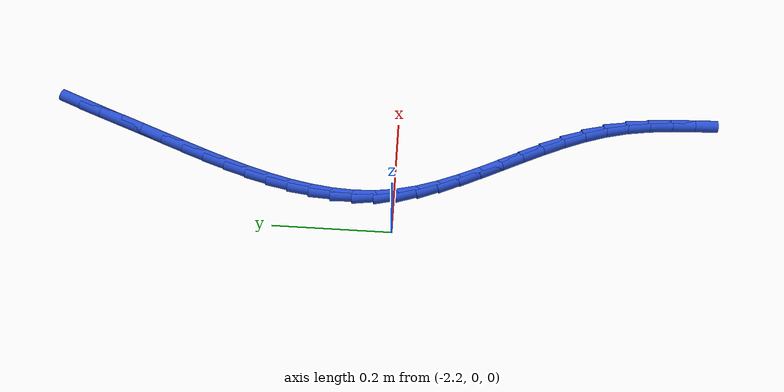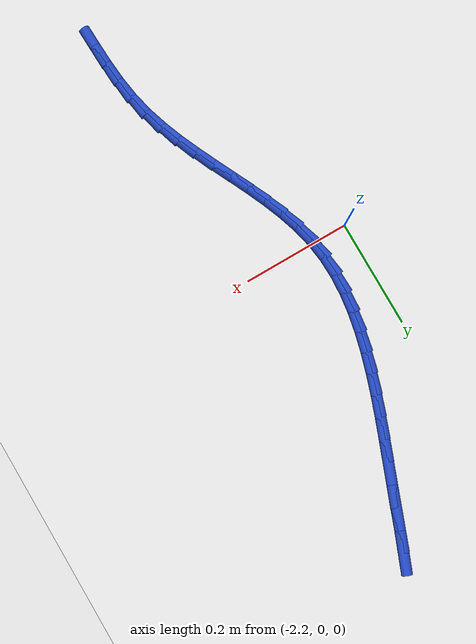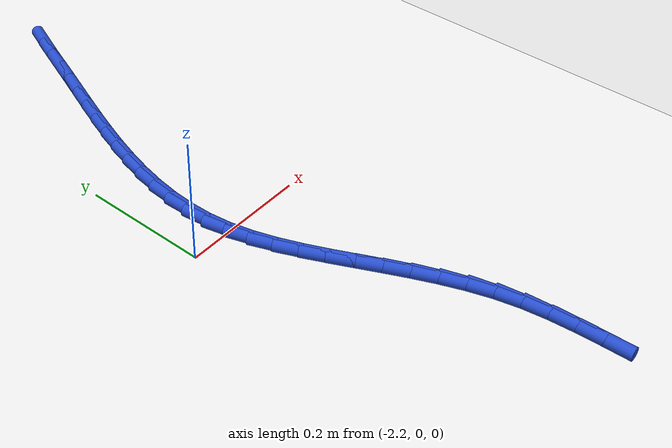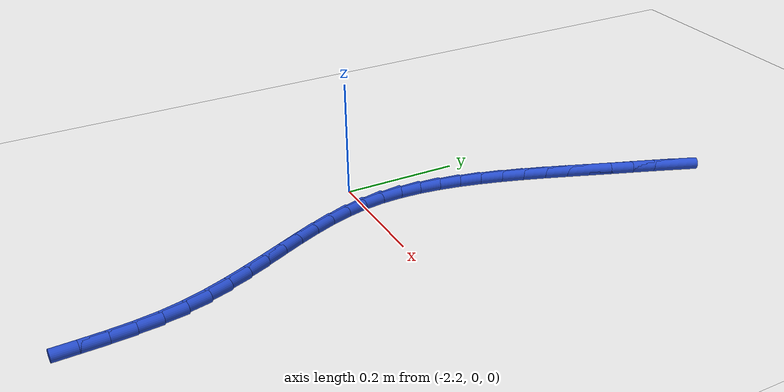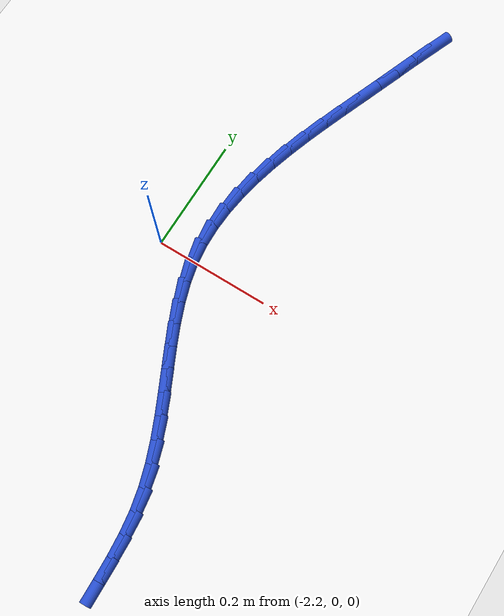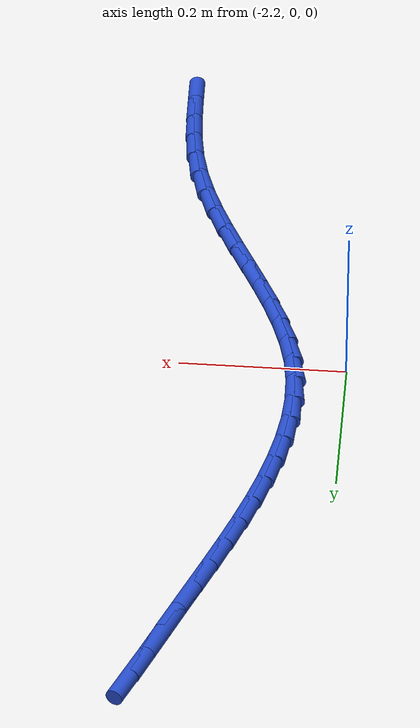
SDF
<sdf version="1.6">
 <world name="default">
  <model name="ground_plane">
   <static>1</static>
   <link name="link">
    <collision name="collision">
     <geometry><plane><normal>0 0 1</normal><size>100 100</size></plane></geometry>
     <surface><friction><ode><mu>100</mu><mu2>50</mu2></ode></friction></surface>
    </collision>
    <visual name="visual">
     <cast_shadows>0</cast_shadows>
     <geometry><plane><normal>0 0 1</normal><size>100 100</size></plane></geometry>
     <material>
      <script><uri>file://media/materials/scripts/gazebo.material</uri><name>Gazebo/WhiteGlow</name></script>
     </material>
    </visual>
   </link>
  </model>
  <model name="line">
   <link name="link_75">
    <pose>-1.9961166261773498 0.5457760377625546 0.01 0 1.57 1.191220238394075</pose>
    <collision name="collision">
     <geometry><cylinder><radius>0.01</radius><length>0.08</length></cylinder></geometry>
    </collision>
    <visual name="visual">
     <material>
      <script><name>Gazebo/Blue</name><uri>file://media/materials/scripts/gazebo.material</uri></script>
     </material>
     <geometry><cylinder><radius>0.01</radius><length>0.08</length></cylinder></geometry>
    </visual>
   </link>
   <link name="link_76">
    <pose>-2.010498629873072 0.5097238016087139 0.01 0 1.57 1.2072569263946782</pose>
    <collision name="collision">
     <geometry><cylinder><radius>0.01</radius><length>0.08</length></cylinder></geometry>
    </collision>
    <visual name="visual">
     <material>
      <script><name>Gazebo/Blue</name><uri>file://media/materials/scripts/gazebo.material</uri></script>
     </material>
     <geometry><cylinder><radius>0.01</radius><length>0.08</length></cylinder></geometry>
    </visual>
   </link>
   <link name="link_77">
    <pose>-2.0244982253440744 0.4729262515931899 0.01 0 1.57 1.2088927748744391</pose>
    <collision name="collision">
     <geometry><cylinder><radius>0.01</radius><length>0.08</length></cylinder></geometry>
    </collision>
    <visual name="visual">
     <material>
      <script><name>Gazebo/Blue</name><uri>file://media/materials/scripts/gazebo.material</uri></script>
     </material>
     <geometry><cylinder><radius>0.01</radius><length>0.08</length></cylinder></geometry>
    </visual>
   </link>
   <link name="link_78">
    <pose>-2.0385671149823406 0.43576375839859477 0.01 0 1.57 1.2026971861670386</pose>
    <collision name="collision">
     <geometry><cylinder><radius>0.01</radius><length>0.08</length></cylinder></geometry>
    </collision>
    <visual name="visual">
     <material>
      <script><name>Gazebo/Blue</name><uri>file://media/materials/scripts/gazebo.material</uri></script>
     </material>
     <geometry><cylinder><radius>0.01</radius><length>0.08</length></cylinder></geometry>
    </visual>
   </link>
   <link name="link_79">
    <pose>-2.0529310289638207 0.39852047291427833 0.01 0 1.57 1.2024738995685083</pose>
    <collision name="collision">
     <geometry><cylinder><radius>0.01</radius><length>0.08</length></cylinder></geometry>
    </collision>
    <visual name="visual">
     <material>
      <script><name>Gazebo/Blue</name><uri>file://media/materials/scripts/gazebo.material</uri></script>
     </material>
     <geometry><cylinder><radius>0.01</radius><length>0.08</length></cylinder></geometry>
    </visual>
   </link>
   <link name="link_80">
    <pose>-2.067309240770012 0.3612648949230466 0.01 0 1.57 1.210092759810846</pose>
    <collision name="collision">
     <geometry><cylinder><radius>0.01</radius><length>0.08</length></cylinder></geometry>
    </collision>
    <visual name="visual">
     <material>
      <script><name>Gazebo/Blue</name><uri>file://media/materials/scripts/gazebo.material</uri></script>
     </material>
     <geometry><cylinder><radius>0.01</radius><length>0.08</length></cylinder></geometry>
    </visual>
   </link>
   <link name="link_81">
    <pose>-2.081352141773197 0.3240361939545264 0.01 0 1.57 1.2257309360348192</pose>
    <collision name="collision">
     <geometry><cylinder><radius>0.01</radius><length>0.08</length></cylinder></geometry>
    </collision>
    <visual name="visual">
     <material>
      <script><name>Gazebo/Blue</name><uri>file://media/materials/scripts/gazebo.material</uri></script>
     </material>
     <geometry><cylinder><radius>0.01</radius><length>0.08</length></cylinder></geometry>
    </visual>
   </link>
   <link name="link_82">
    <pose>-2.0947101233456578 0.28687353953834327 0.01 0 1.57 1.2497508797778893</pose>
    <collision name="collision">
     <geometry><cylinder><radius>0.01</radius><length>0.08</length></cylinder></geometry>
    </collision>
    <visual name="visual">
     <material>
      <script><name>Gazebo/Blue</name><uri>file://media/materials/scripts/gazebo.material</uri></script>
     </material>
     <geometry><cylinder><radius>0.01</radius><length>0.08</length></cylinder></geometry>
    </visual>
   </link>
   <link name="link_83">
    <pose>-2.107033576859676 0.24981610120412287 0.01 0 1.57 1.2826881825368504</pose>
    <collision name="collision">
     <geometry><cylinder><radius>0.01</radius><length>0.08</length></cylinder></geometry>
    </collision>
    <visual name="visual">
     <material>
      <script><name>Gazebo/Blue</name><uri>file://media/materials/scripts/gazebo.material</uri></script>
     </material>
     <geometry><cylinder><radius>0.01</radius><length>0.08</length></cylinder></geometry>
    </visual>
   </link>
   <link name="link_84">
    <pose>-2.117972893687534 0.21290304848149194 0.01 0 1.57 1.325223336569098</pose>
    <collision name="collision">
     <geometry><cylinder><radius>0.01</radius><length>0.08</length></cylinder></geometry>
    </collision>
    <visual name="visual">
     <material>
      <script><name>Gazebo/Blue</name><uri>file://media/materials/scripts/gazebo.material</uri></script>
     </material>
     <geometry><cylinder><radius>0.01</radius><length>0.08</length></cylinder></geometry>
    </visual>
   </link>
   <link name="link_85">
    <pose>-2.1271784652015153 0.17617355090007586 0.01 0 1.57 1.378123412165076</pose>
    <collision name="collision">
     <geometry><cylinder><radius>0.01</radius><length>0.08</length></cylinder></geometry>
    </collision>
    <visual name="visual">
     <material>
      <script><name>Gazebo/Blue</name><uri>file://media/materials/scripts/gazebo.material</uri></script>
     </material>
     <geometry><cylinder><radius>0.01</radius><length>0.08</length></cylinder></geometry>
    </visual>
   </link>
   <link name="link_86">
    <pose>-2.1343006827739006 0.13966677798950128 0.01 0 1.57 1.4421339816494496</pose>
    <collision name="collision">
     <geometry><cylinder><radius>0.01</radius><length>0.08</length></cylinder></geometry>
    </collision>
    <visual name="visual">
     <material>
      <script><name>Gazebo/Blue</name><uri>file://media/materials/scripts/gazebo.material</uri></script>
     </material>
     <geometry><cylinder><radius>0.01</radius><length>0.08</length></cylinder></geometry>
    </visual>
   </link>
   <link name="link_87">
    <pose>-2.1389899377769734 0.10342189927939394 0.01 0 1.57 1.5177997705538293</pose>
    <collision name="collision">
     <geometry><cylinder><radius>0.01</radius><length>0.08</length></cylinder></geometry>
    </collision>
    <visual name="visual">
     <material>
      <script><name>Gazebo/Blue</name><uri>file://media/materials/scripts/gazebo.material</uri></script>
     </material>
     <geometry><cylinder><radius>0.01</radius><length>0.08</length></cylinder></geometry>
    </visual>
   </link>
   <link name="link_88">
    <pose>-2.1408966215830154 0.06747808429937943 0.01 0 1.57 -1.5363893282952021</pose>
    <collision name="collision">
     <geometry><cylinder><radius>0.01</radius><length>0.08</length></cylinder></geometry>
    </collision>
    <visual name="visual">
     <material>
      <script><name>Gazebo/Blue</name><uri>file://media/materials/scripts/gazebo.material</uri></script>
     </material>
     <geometry><cylinder><radius>0.01</radius><length>0.08</length></cylinder></geometry>
    </visual>
   </link>
   <link name="link_89">
    <pose>-2.13967112556431 0.03187450257908454 0.01 0 1.57 -1.4379607748314847</pose>
    <collision name="collision">
     <geometry><cylinder><radius>0.01</radius><length>0.08</length></cylinder></geometry>
    </collision>
    <visual name="visual">
     <material>
      <script><name>Gazebo/Blue</name><uri>file://media/materials/scripts/gazebo.material</uri></script>
     </material>
     <geometry><cylinder><radius>0.01</radius><length>0.08</length></cylinder></geometry>
    </visual>
   </link>
   <link name="link_90">
    <pose>-2.134964375142746 -0.003349755904739051 0.01 0 1.57 -1.3373537332430845</pose>
    <collision name="collision">
     <geometry><cylinder><radius>0.01</radius><length>0.08</length></cylinder></geometry>
    </collision>
    <visual name="visual">
     <material>
      <script><name>Gazebo/Blue</name><uri>file://media/materials/scripts/gazebo.material</uri></script>
     </material>
     <geometry><cylinder><radius>0.01</radius><length>0.08</length></cylinder></geometry>
    </visual>
   </link>
   <link name="link_91">
    <pose>-2.126679394360159 -0.0381931541842993 0.01 0 1.57 -1.2546081454313271</pose>
    <collision name="collision">
     <geometry><cylinder><radius>0.01</radius><length>0.08</length></cylinder></geometry>
    </collision>
    <visual name="visual">
     <material>
      <script><name>Gazebo/Blue</name><uri>file://media/materials/scripts/gazebo.material</uri></script>
     </material>
     <geometry><cylinder><radius>0.01</radius><length>0.08</length></cylinder></geometry>
    </visual>
   </link>
   <link name="link_92">
    <pose>-2.1153731170481325 -0.07275156272782796 0.01 0 1.57 -1.1924969780874761</pose>
    <collision name="collision">
     <geometry><cylinder><radius>0.01</radius><length>0.08</length></cylinder></geometry>
    </collision>
    <visual name="visual">
     <material>
      <script><name>Gazebo/Blue</name><uri>file://media/materials/scripts/gazebo.material</uri></script>
     </material>
     <geometry><cylinder><radius>0.01</radius><length>0.08</length></cylinder></geometry>
    </visual>
   </link>
   <link name="link_93">
    <pose>-2.1017071193077093 -0.10713643968143811 0.01 0 1.57 -1.1499095675557118</pose>
    <collision name="collision">
     <geometry><cylinder><radius>0.01</radius><length>0.08</length></cylinder></geometry>
    </collision>
    <visual name="visual">
     <material>
      <script><name>Gazebo/Blue</name><uri>file://media/materials/scripts/gazebo.material</uri></script>
     </material>
     <geometry><cylinder><radius>0.01</radius><length>0.08</length></cylinder></geometry>
    </visual>
   </link>
   <link name="link_94">
    <pose>-2.086342977239931 -0.14145924319124495 0.01 0 1.57 -1.1255947553271832</pose>
    <collision name="collision">
     <geometry><cylinder><radius>0.01</radius><length>0.08</length></cylinder></geometry>
    </collision>
    <visual name="visual">
     <material>
      <script><name>Gazebo/Blue</name><uri>file://media/materials/scripts/gazebo.material</uri></script>
     </material>
     <geometry><cylinder><radius>0.01</radius><length>0.08</length></cylinder></geometry>
    </visual>
   </link>
   <link name="link_95">
    <pose>-2.0699422669458385 -0.1758314314033628 0.01 0 1.57 -1.1185835181226644</pose>
    <collision name="collision">
     <geometry><cylinder><radius>0.01</radius><length>0.08</length></cylinder></geometry>
    </collision>
    <visual name="visual">
     <material>
      <script><name>Gazebo/Blue</name><uri>file://media/materials/scripts/gazebo.material</uri></script>
     </material>
     <geometry><cylinder><radius>0.01</radius><length>0.08</length></cylinder></geometry>
    </visual>
   </link>
   <link name="link_96">
    <pose>-2.053166564526473 -0.21036446246390608 0.01 0 1.57 -1.1283662044185452</pose>
    <collision name="collision">
     <geometry><cylinder><radius>0.01</radius><length>0.08</length></cylinder></geometry>
    </collision>
    <visual name="visual">
     <material>
      <script><name>Gazebo/Blue</name><uri>file://media/materials/scripts/gazebo.material</uri></script>
     </material>
     <geometry><cylinder><radius>0.01</radius><length>0.08</length></cylinder></geometry>
    </visual>
   </link>
   <link name="link_97">
    <pose>-2.0366774460828774 -0.2451697945189893 0.01 0 1.57 -1.1549151440470429</pose>
    <collision name="collision">
     <geometry><cylinder><radius>0.01</radius><length>0.08</length></cylinder></geometry>
    </collision>
    <visual name="visual">
     <material>
      <script><name>Gazebo/Blue</name><uri>file://media/materials/scripts/gazebo.material</uri></script>
     </material>
     <geometry><cylinder><radius>0.01</radius><length>0.08</length></cylinder></geometry>
    </visual>
   </link>
   <link name="link_98">
    <pose>-2.0211364877160922 -0.28035888571472756 0.01 0 1.57 -1.1985914504812236</pose>
    <collision name="collision">
     <geometry><cylinder><radius>0.01</radius><length>0.08</length></cylinder></geometry>
    </collision>
    <visual name="visual">
     <material>
      <script><name>Gazebo/Blue</name><uri>file://media/materials/scripts/gazebo.material</uri></script>
     </material>
     <geometry><cylinder><radius>0.01</radius><length>0.08</length></cylinder></geometry>
    </visual>
   </link>
   <link name="link_99">
    <pose>-2.0072052655271593 -0.3160431941972338 0.01 0 1.57 -1.2599241539665238</pose>
    <collision name="collision">
     <geometry><cylinder><radius>0.01</radius><length>0.08</length></cylinder></geometry>
    </collision>
    <visual name="visual">
     <material>
      <script><name>Gazebo/Blue</name><uri>file://media/materials/scripts/gazebo.material</uri></script>
     </material>
     <geometry><cylinder><radius>0.01</radius><length>0.08</length></cylinder></geometry>
    </visual>
   </link>
   <link name="link_100">
    <pose>-1.9955453556171197 -0.3523341781126232 0.01 0 1.57 -1.3390344368495481</pose>
    <collision name="collision">
     <geometry><cylinder><radius>0.01</radius><length>0.08</length></cylinder></geometry>
    </collision>
    <visual name="visual">
     <material>
      <script><name>Gazebo/Blue</name><uri>file://media/materials/scripts/gazebo.material</uri></script>
     </material>
     <geometry><cylinder><radius>0.01</radius><length>0.08</length></cylinder></geometry>
    </visual>
   </link>
   <link name="link_101">
    <pose>-1.986811487752412 -0.3893416829636796 0.01 0 1.57 -1.4213249809103699</pose>
    <collision name="collision">
     <geometry><cylinder><radius>0.01</radius><length>0.08</length></cylinder></geometry>
    </collision>
    <visual name="visual">
     <material>
      <script><name>Gazebo/Blue</name><uri>file://media/materials/scripts/gazebo.material</uri></script>
     </material>
     <geometry><cylinder><radius>0.01</radius><length>0.08</length></cylinder></geometry>
    </visual>
   </link>
   <link name="link_102">
    <pose>-1.9811325658787096 -0.4270516968094643 0.01 0 1.57 -1.4824102859048822</pose>
    <collision name="collision">
     <geometry><cylinder><radius>0.01</radius><length>0.08</length></cylinder></geometry>
    </collision>
    <visual name="visual">
     <material>
      <script><name>Gazebo/Blue</name><uri>file://media/materials/scripts/gazebo.material</uri></script>
     </material>
     <geometry><cylinder><radius>0.01</radius><length>0.08</length></cylinder></geometry>
    </visual>
   </link>
   <link name="link_103">
    <pose>-1.9777483672734049 -0.4652407753230086 0.01 0 1.57 -1.520466032618539</pose>
    <collision name="collision">
     <geometry><cylinder><radius>0.01</radius><length>0.08</length></cylinder></geometry>
    </collision>
    <visual name="visual">
     <material>
      <script><name>Gazebo/Blue</name><uri>file://media/materials/scripts/gazebo.material</uri></script>
     </material>
     <geometry><cylinder><radius>0.01</radius><length>0.08</length></cylinder></geometry>
    </visual>
   </link>
   <link name="link_104">
    <pose>-1.9758128174475822 -0.5036652519290344 0.01 0 1.57 -1.5361119830597822</pose>
    <collision name="collision">
     <geometry><cylinder><radius>0.01</radius><length>0.08</length></cylinder></geometry>
    </collision>
    <visual name="visual">
     <material>
      <script><name>Gazebo/Blue</name><uri>file://media/materials/scripts/gazebo.material</uri></script>
     </material>
     <geometry><cylinder><radius>0.01</radius><length>0.08</length></cylinder></geometry>
    </visual>
   </link>
  </model>
 </world>
</sdf>
